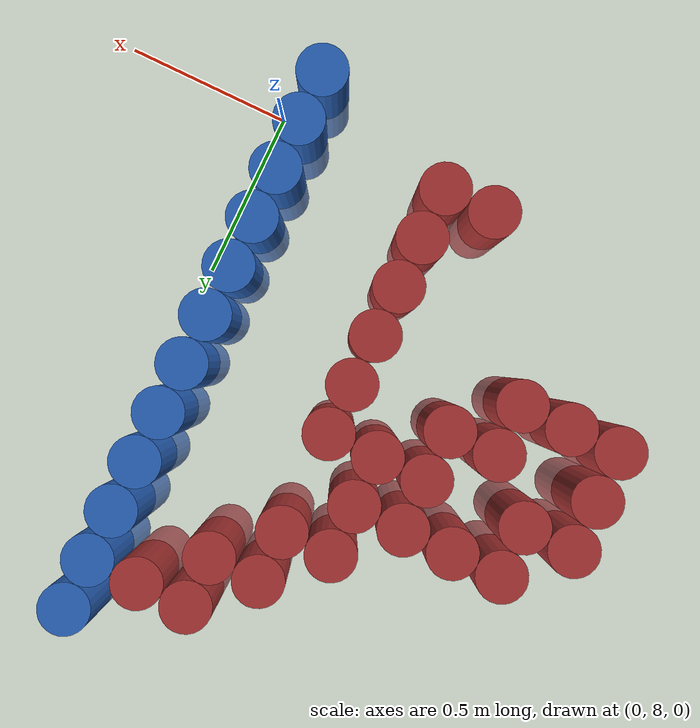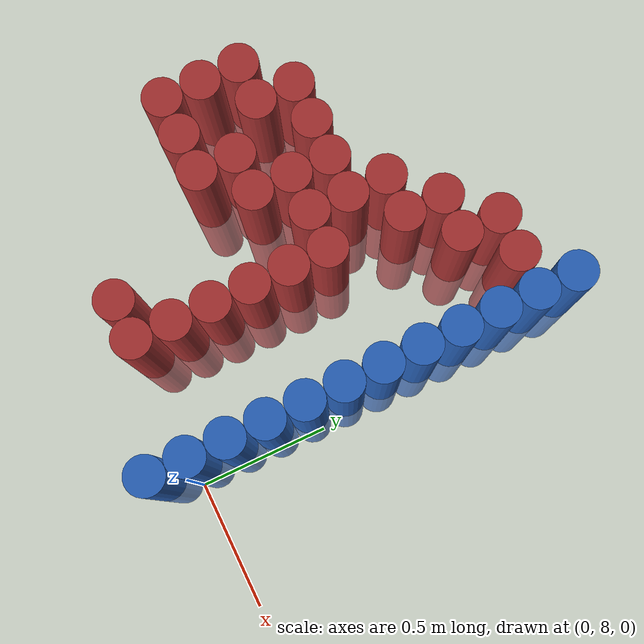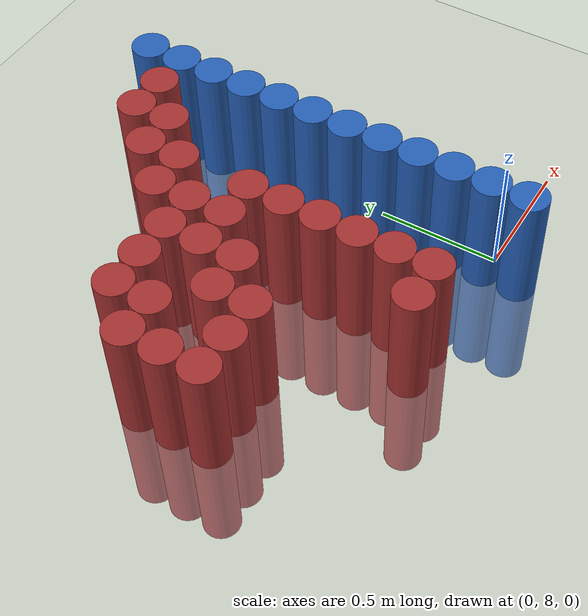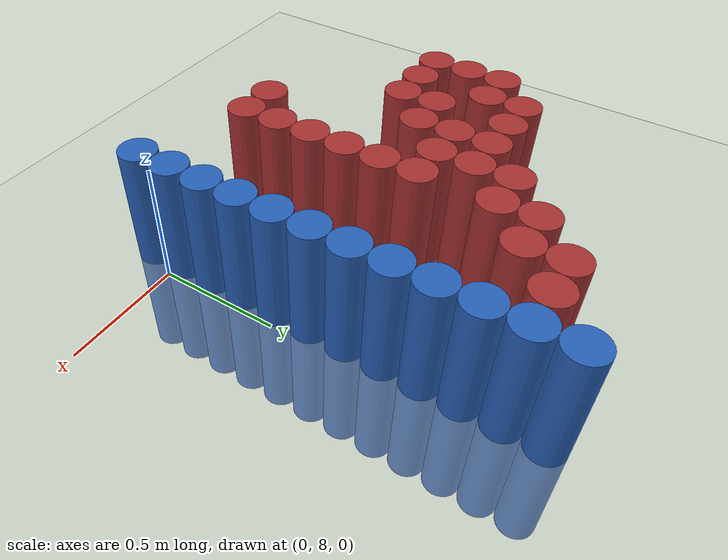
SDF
<sdf version="1.6">
 <world name="default">
  <model name="ground_plane">
   <static>1</static>
   <link name="link">
    <collision name="collision">
     <geometry><plane><normal>0 0 1</normal><size>100 100</size></plane></geometry>
     <surface><friction><ode><mu>100</mu><mu2>50</mu2></ode></friction></surface>
    </collision>
    <visual name="visual">
     <cast_shadows>0</cast_shadows>
     <geometry><plane><normal>0 0 1</normal><size>100 100</size></plane></geometry>
     <material>
      <script><uri>file://media/materials/scripts/gazebo.material</uri><name>Gazebo/Grey</name></script>
     </material>
    </visual>
   </link>
  </model>
  <model name="unit_cylinder_218">
   <static>1</static>
   <pose>-1.275000 8.475000 0.000000 0.000000 0.000000 0.000000</pose>
   <link name="link">
    <inertial>
     <mass>1</mass>
     <inertia><ixx>0.145833</ixx><ixy>0</ixy><ixz>0</ixz><iyy>0.145833</iyy><iyz>0</iyz><izz>0.125</izz></inertia>
    </inertial>
    <collision name="collision">
     <geometry><cylinder><radius>0.075000</radius><length>1</length></cylinder></geometry>
    </collision>
    <visual name="visual">
     <geometry><cylinder><radius>0.075000</radius><length>1</length></cylinder></geometry>
     <material>
      <ambient>0.648000 0.192000 0.192000 1</ambient>
      <diffuse>0.648000 0.192000 0.192000 1</diffuse>
     </material>
     <material>
      <script><name>Gazebo/Grey</name><uri>file://media/materials/scripts/gazebo.material</uri></script>
     </material>
    </visual>
    <sensor name="sensor_contact" type="contact"><contact><collision>collision</collision></contact></sensor>
   </link>
   <plugin filename="gz-sim-touchplugin-system" name="gz::sim::systems::TouchPlugin">
    <target>robot</target>
    <namespace>robot</namespace>
    <time>0.001</time>
    <enabled>true</enabled>
   </plugin>
  </model>
  <model name="unit_cylinder_219">
   <static>1</static>
   <pose>-1.275000 8.625000 0.000000 0.000000 0.000000 0.000000</pose>
   <link name="link">
    <inertial>
     <mass>1</mass>
     <inertia><ixx>0.145833</ixx><ixy>0</ixy><ixz>0</ixz><iyy>0.145833</iyy><iyz>0</iyz><izz>0.125</izz></inertia>
    </inertial>
    <collision name="collision">
     <geometry><cylinder><radius>0.075000</radius><length>1</length></cylinder></geometry>
    </collision>
    <visual name="visual">
     <geometry><cylinder><radius>0.075000</radius><length>1</length></cylinder></geometry>
     <material>
      <ambient>0.648000 0.192000 0.192000 1</ambient>
      <diffuse>0.648000 0.192000 0.192000 1</diffuse>
     </material>
     <material>
      <script><name>Gazebo/Grey</name><uri>file://media/materials/scripts/gazebo.material</uri></script>
     </material>
    </visual>
    <sensor name="sensor_contact" type="contact"><contact><collision>collision</collision></contact></sensor>
   </link>
   <plugin filename="gz-sim-touchplugin-system" name="gz::sim::systems::TouchPlugin">
    <target>robot</target>
    <namespace>robot</namespace>
    <time>0.001</time>
    <enabled>true</enabled>
   </plugin>
  </model>
  <model name="unit_cylinder_220">
   <static>1</static>
   <pose>-1.275000 8.775000 0.000000 0.000000 0.000000 0.000000</pose>
   <link name="link">
    <inertial>
     <mass>1</mass>
     <inertia><ixx>0.145833</ixx><ixy>0</ixy><ixz>0</ixz><iyy>0.145833</iyy><iyz>0</iyz><izz>0.125</izz></inertia>
    </inertial>
    <collision name="collision">
     <geometry><cylinder><radius>0.075000</radius><length>1</length></cylinder></geometry>
    </collision>
    <visual name="visual">
     <geometry><cylinder><radius>0.075000</radius><length>1</length></cylinder></geometry>
     <material>
      <ambient>0.648000 0.192000 0.192000 1</ambient>
      <diffuse>0.648000 0.192000 0.192000 1</diffuse>
     </material>
     <material>
      <script><name>Gazebo/Grey</name><uri>file://media/materials/scripts/gazebo.material</uri></script>
     </material>
    </visual>
    <sensor name="sensor_contact" type="contact"><contact><collision>collision</collision></contact></sensor>
   </link>
   <plugin filename="gz-sim-touchplugin-system" name="gz::sim::systems::TouchPlugin">
    <target>robot</target>
    <namespace>robot</namespace>
    <time>0.001</time>
    <enabled>true</enabled>
   </plugin>
  </model>
  <model name="unit_cylinder_226">
   <static>1</static>
   <pose>-1.125000 8.475000 0.000000 0.000000 0.000000 0.000000</pose>
   <link name="link">
    <inertial>
     <mass>1</mass>
     <inertia><ixx>0.145833</ixx><ixy>0</ixy><ixz>0</ixz><iyy>0.145833</iyy><iyz>0</iyz><izz>0.125</izz></inertia>
    </inertial>
    <collision name="collision">
     <geometry><cylinder><radius>0.075000</radius><length>1</length></cylinder></geometry>
    </collision>
    <visual name="visual">
     <geometry><cylinder><radius>0.075000</radius><length>1</length></cylinder></geometry>
     <material>
      <ambient>0.648000 0.192000 0.192000 1</ambient>
      <diffuse>0.648000 0.192000 0.192000 1</diffuse>
     </material>
     <material>
      <script><name>Gazebo/Grey</name><uri>file://media/materials/scripts/gazebo.material</uri></script>
     </material>
    </visual>
    <sensor name="sensor_contact" type="contact"><contact><collision>collision</collision></contact></sensor>
   </link>
   <plugin filename="gz-sim-touchplugin-system" name="gz::sim::systems::TouchPlugin">
    <target>robot</target>
    <namespace>robot</namespace>
    <time>0.001</time>
    <enabled>true</enabled>
   </plugin>
  </model>
  <model name="unit_cylinder_227">
   <static>1</static>
   <pose>-1.125000 8.775000 0.000000 0.000000 0.000000 0.000000</pose>
   <link name="link">
    <inertial>
     <mass>1</mass>
     <inertia><ixx>0.145833</ixx><ixy>0</ixy><ixz>0</ixz><iyy>0.145833</iyy><iyz>0</iyz><izz>0.125</izz></inertia>
    </inertial>
    <collision name="collision">
     <geometry><cylinder><radius>0.075000</radius><length>1</length></cylinder></geometry>
    </collision>
    <visual name="visual">
     <geometry><cylinder><radius>0.075000</radius><length>1</length></cylinder></geometry>
     <material>
      <ambient>0.648000 0.192000 0.192000 1</ambient>
      <diffuse>0.648000 0.192000 0.192000 1</diffuse>
     </material>
     <material>
      <script><name>Gazebo/Grey</name><uri>file://media/materials/scripts/gazebo.material</uri></script>
     </material>
    </visual>
    <sensor name="sensor_contact" type="contact"><contact><collision>collision</collision></contact></sensor>
   </link>
   <plugin filename="gz-sim-touchplugin-system" name="gz::sim::systems::TouchPlugin">
    <target>robot</target>
    <namespace>robot</namespace>
    <time>0.001</time>
    <enabled>true</enabled>
   </plugin>
  </model>
  <model name="unit_cylinder_228">
   <static>1</static>
   <pose>-1.125000 8.925000 0.000000 0.000000 0.000000 0.000000</pose>
   <link name="link">
    <inertial>
     <mass>1</mass>
     <inertia><ixx>0.145833</ixx><ixy>0</ixy><ixz>0</ixz><iyy>0.145833</iyy><iyz>0</iyz><izz>0.125</izz></inertia>
    </inertial>
    <collision name="collision">
     <geometry><cylinder><radius>0.075000</radius><length>1</length></cylinder></geometry>
    </collision>
    <visual name="visual">
     <geometry><cylinder><radius>0.075000</radius><length>1</length></cylinder></geometry>
     <material>
      <ambient>0.648000 0.192000 0.192000 1</ambient>
      <diffuse>0.648000 0.192000 0.192000 1</diffuse>
     </material>
     <material>
      <script><name>Gazebo/Grey</name><uri>file://media/materials/scripts/gazebo.material</uri></script>
     </material>
    </visual>
    <sensor name="sensor_contact" type="contact"><contact><collision>collision</collision></contact></sensor>
   </link>
   <plugin filename="gz-sim-touchplugin-system" name="gz::sim::systems::TouchPlugin">
    <target>robot</target>
    <namespace>robot</namespace>
    <time>0.001</time>
    <enabled>true</enabled>
   </plugin>
  </model>
  <model name="unit_cylinder_233">
   <static>1</static>
   <pose>-0.975000 8.475000 0.000000 0.000000 0.000000 0.000000</pose>
   <link name="link">
    <inertial>
     <mass>1</mass>
     <inertia><ixx>0.145833</ixx><ixy>0</ixy><ixz>0</ixz><iyy>0.145833</iyy><iyz>0</iyz><izz>0.125</izz></inertia>
    </inertial>
    <collision name="collision">
     <geometry><cylinder><radius>0.075000</radius><length>1</length></cylinder></geometry>
    </collision>
    <visual name="visual">
     <geometry><cylinder><radius>0.075000</radius><length>1</length></cylinder></geometry>
     <material>
      <ambient>0.648000 0.192000 0.192000 1</ambient>
      <diffuse>0.648000 0.192000 0.192000 1</diffuse>
     </material>
     <material>
      <script><name>Gazebo/Grey</name><uri>file://media/materials/scripts/gazebo.material</uri></script>
     </material>
    </visual>
    <sensor name="sensor_contact" type="contact"><contact><collision>collision</collision></contact></sensor>
   </link>
   <plugin filename="gz-sim-touchplugin-system" name="gz::sim::systems::TouchPlugin">
    <target>robot</target>
    <namespace>robot</namespace>
    <time>0.001</time>
    <enabled>true</enabled>
   </plugin>
  </model>
  <model name="unit_cylinder_234">
   <static>1</static>
   <pose>-0.975000 8.625000 0.000000 0.000000 0.000000 0.000000</pose>
   <link name="link">
    <inertial>
     <mass>1</mass>
     <inertia><ixx>0.145833</ixx><ixy>0</ixy><ixz>0</ixz><iyy>0.145833</iyy><iyz>0</iyz><izz>0.125</izz></inertia>
    </inertial>
    <collision name="collision">
     <geometry><cylinder><radius>0.075000</radius><length>1</length></cylinder></geometry>
    </collision>
    <visual name="visual">
     <geometry><cylinder><radius>0.075000</radius><length>1</length></cylinder></geometry>
     <material>
      <ambient>0.648000 0.192000 0.192000 1</ambient>
      <diffuse>0.648000 0.192000 0.192000 1</diffuse>
     </material>
     <material>
      <script><name>Gazebo/Grey</name><uri>file://media/materials/scripts/gazebo.material</uri></script>
     </material>
    </visual>
    <sensor name="sensor_contact" type="contact"><contact><collision>collision</collision></contact></sensor>
   </link>
   <plugin filename="gz-sim-touchplugin-system" name="gz::sim::systems::TouchPlugin">
    <target>robot</target>
    <namespace>robot</namespace>
    <time>0.001</time>
    <enabled>true</enabled>
   </plugin>
  </model>
  <model name="unit_cylinder_235">
   <static>1</static>
   <pose>-0.975000 8.925000 0.000000 0.000000 0.000000 0.000000</pose>
   <link name="link">
    <inertial>
     <mass>1</mass>
     <inertia><ixx>0.145833</ixx><ixy>0</ixy><ixz>0</ixz><iyy>0.145833</iyy><iyz>0</iyz><izz>0.125</izz></inertia>
    </inertial>
    <collision name="collision">
     <geometry><cylinder><radius>0.075000</radius><length>1</length></cylinder></geometry>
    </collision>
    <visual name="visual">
     <geometry><cylinder><radius>0.075000</radius><length>1</length></cylinder></geometry>
     <material>
      <ambient>0.648000 0.192000 0.192000 1</ambient>
      <diffuse>0.648000 0.192000 0.192000 1</diffuse>
     </material>
     <material>
      <script><name>Gazebo/Grey</name><uri>file://media/materials/scripts/gazebo.material</uri></script>
     </material>
    </visual>
    <sensor name="sensor_contact" type="contact"><contact><collision>collision</collision></contact></sensor>
   </link>
   <plugin filename="gz-sim-touchplugin-system" name="gz::sim::systems::TouchPlugin">
    <target>robot</target>
    <namespace>robot</namespace>
    <time>0.001</time>
    <enabled>true</enabled>
   </plugin>
  </model>
  <model name="unit_cylinder_238">
   <static>1</static>
   <pose>-0.825000 8.625000 0.000000 0.000000 0.000000 0.000000</pose>
   <link name="link">
    <inertial>
     <mass>1</mass>
     <inertia><ixx>0.145833</ixx><ixy>0</ixy><ixz>0</ixz><iyy>0.145833</iyy><iyz>0</iyz><izz>0.125</izz></inertia>
    </inertial>
    <collision name="collision">
     <geometry><cylinder><radius>0.075000</radius><length>1</length></cylinder></geometry>
    </collision>
    <visual name="visual">
     <geometry><cylinder><radius>0.075000</radius><length>1</length></cylinder></geometry>
     <material>
      <ambient>0.648000 0.192000 0.192000 1</ambient>
      <diffuse>0.648000 0.192000 0.192000 1</diffuse>
     </material>
     <material>
      <script><name>Gazebo/Grey</name><uri>file://media/materials/scripts/gazebo.material</uri></script>
     </material>
    </visual>
    <sensor name="sensor_contact" type="contact"><contact><collision>collision</collision></contact></sensor>
   </link>
   <plugin filename="gz-sim-touchplugin-system" name="gz::sim::systems::TouchPlugin">
    <target>robot</target>
    <namespace>robot</namespace>
    <time>0.001</time>
    <enabled>true</enabled>
   </plugin>
  </model>
  <model name="unit_cylinder_239">
   <static>1</static>
   <pose>-0.825000 8.775000 0.000000 0.000000 0.000000 0.000000</pose>
   <link name="link">
    <inertial>
     <mass>1</mass>
     <inertia><ixx>0.145833</ixx><ixy>0</ixy><ixz>0</ixz><iyy>0.145833</iyy><iyz>0</iyz><izz>0.125</izz></inertia>
    </inertial>
    <collision name="collision">
     <geometry><cylinder><radius>0.075000</radius><length>1</length></cylinder></geometry>
    </collision>
    <visual name="visual">
     <geometry><cylinder><radius>0.075000</radius><length>1</length></cylinder></geometry>
     <material>
      <ambient>0.648000 0.192000 0.192000 1</ambient>
      <diffuse>0.648000 0.192000 0.192000 1</diffuse>
     </material>
     <material>
      <script><name>Gazebo/Grey</name><uri>file://media/materials/scripts/gazebo.material</uri></script>
     </material>
    </visual>
    <sensor name="sensor_contact" type="contact"><contact><collision>collision</collision></contact></sensor>
   </link>
   <plugin filename="gz-sim-touchplugin-system" name="gz::sim::systems::TouchPlugin">
    <target>robot</target>
    <namespace>robot</namespace>
    <time>0.001</time>
    <enabled>true</enabled>
   </plugin>
  </model>
  <model name="unit_cylinder_240">
   <static>1</static>
   <pose>-0.825000 8.925000 0.000000 0.000000 0.000000 0.000000</pose>
   <link name="link">
    <inertial>
     <mass>1</mass>
     <inertia><ixx>0.145833</ixx><ixy>0</ixy><ixz>0</ixz><iyy>0.145833</iyy><iyz>0</iyz><izz>0.125</izz></inertia>
    </inertial>
    <collision name="collision">
     <geometry><cylinder><radius>0.075000</radius><length>1</length></cylinder></geometry>
    </collision>
    <visual name="visual">
     <geometry><cylinder><radius>0.075000</radius><length>1</length></cylinder></geometry>
     <material>
      <ambient>0.648000 0.192000 0.192000 1</ambient>
      <diffuse>0.648000 0.192000 0.192000 1</diffuse>
     </material>
     <material>
      <script><name>Gazebo/Grey</name><uri>file://media/materials/scripts/gazebo.material</uri></script>
     </material>
    </visual>
    <sensor name="sensor_contact" type="contact"><contact><collision>collision</collision></contact></sensor>
   </link>
   <plugin filename="gz-sim-touchplugin-system" name="gz::sim::systems::TouchPlugin">
    <target>robot</target>
    <namespace>robot</namespace>
    <time>0.001</time>
    <enabled>true</enabled>
   </plugin>
  </model>
  <model name="unit_cylinder_243">
   <static>1</static>
   <pose>-0.675000 8.025000 0.000000 0.000000 0.000000 0.000000</pose>
   <link name="link">
    <inertial>
     <mass>1</mass>
     <inertia><ixx>0.145833</ixx><ixy>0</ixy><ixz>0</ixz><iyy>0.145833</iyy><iyz>0</iyz><izz>0.125</izz></inertia>
    </inertial>
    <collision name="collision">
     <geometry><cylinder><radius>0.075000</radius><length>1</length></cylinder></geometry>
    </collision>
    <visual name="visual">
     <geometry><cylinder><radius>0.075000</radius><length>1</length></cylinder></geometry>
     <material>
      <ambient>0.648000 0.192000 0.192000 1</ambient>
      <diffuse>0.648000 0.192000 0.192000 1</diffuse>
     </material>
     <material>
      <script><name>Gazebo/Grey</name><uri>file://media/materials/scripts/gazebo.material</uri></script>
     </material>
    </visual>
    <sensor name="sensor_contact" type="contact"><contact><collision>collision</collision></contact></sensor>
   </link>
   <plugin filename="gz-sim-touchplugin-system" name="gz::sim::systems::TouchPlugin">
    <target>robot</target>
    <namespace>robot</namespace>
    <time>0.001</time>
    <enabled>true</enabled>
   </plugin>
  </model>
  <model name="unit_cylinder_244">
   <static>1</static>
   <pose>-0.675000 8.775000 0.000000 0.000000 0.000000 0.000000</pose>
   <link name="link">
    <inertial>
     <mass>1</mass>
     <inertia><ixx>0.145833</ixx><ixy>0</ixy><ixz>0</ixz><iyy>0.145833</iyy><iyz>0</iyz><izz>0.125</izz></inertia>
    </inertial>
    <collision name="collision">
     <geometry><cylinder><radius>0.075000</radius><length>1</length></cylinder></geometry>
    </collision>
    <visual name="visual">
     <geometry><cylinder><radius>0.075000</radius><length>1</length></cylinder></geometry>
     <material>
      <ambient>0.648000 0.192000 0.192000 1</ambient>
      <diffuse>0.648000 0.192000 0.192000 1</diffuse>
     </material>
     <material>
      <script><name>Gazebo/Grey</name><uri>file://media/materials/scripts/gazebo.material</uri></script>
     </material>
    </visual>
    <sensor name="sensor_contact" type="contact"><contact><collision>collision</collision></contact></sensor>
   </link>
   <plugin filename="gz-sim-touchplugin-system" name="gz::sim::systems::TouchPlugin">
    <target>robot</target>
    <namespace>robot</namespace>
    <time>0.001</time>
    <enabled>true</enabled>
   </plugin>
  </model>
  <model name="unit_cylinder_245">
   <static>1</static>
   <pose>-0.675000 8.925000 0.000000 0.000000 0.000000 0.000000</pose>
   <link name="link">
    <inertial>
     <mass>1</mass>
     <inertia><ixx>0.145833</ixx><ixy>0</ixy><ixz>0</ixz><iyy>0.145833</iyy><iyz>0</iyz><izz>0.125</izz></inertia>
    </inertial>
    <collision name="collision">
     <geometry><cylinder><radius>0.075000</radius><length>1</length></cylinder></geometry>
    </collision>
    <visual name="visual">
     <geometry><cylinder><radius>0.075000</radius><length>1</length></cylinder></geometry>
     <material>
      <ambient>0.648000 0.192000 0.192000 1</ambient>
      <diffuse>0.648000 0.192000 0.192000 1</diffuse>
     </material>
     <material>
      <script><name>Gazebo/Grey</name><uri>file://media/materials/scripts/gazebo.material</uri></script>
     </material>
    </visual>
    <sensor name="sensor_contact" type="contact"><contact><collision>collision</collision></contact></sensor>
   </link>
   <plugin filename="gz-sim-touchplugin-system" name="gz::sim::systems::TouchPlugin">
    <target>robot</target>
    <namespace>robot</namespace>
    <time>0.001</time>
    <enabled>true</enabled>
   </plugin>
  </model>
  <model name="unit_cylinder_246">
   <static>1</static>
   <pose>-0.675000 9.075000 0.000000 0.000000 0.000000 0.000000</pose>
   <link name="link">
    <inertial>
     <mass>1</mass>
     <inertia><ixx>0.145833</ixx><ixy>0</ixy><ixz>0</ixz><iyy>0.145833</iyy><iyz>0</iyz><izz>0.125</izz></inertia>
    </inertial>
    <collision name="collision">
     <geometry><cylinder><radius>0.075000</radius><length>1</length></cylinder></geometry>
    </collision>
    <visual name="visual">
     <geometry><cylinder><radius>0.075000</radius><length>1</length></cylinder></geometry>
     <material>
      <ambient>0.648000 0.192000 0.192000 1</ambient>
      <diffuse>0.648000 0.192000 0.192000 1</diffuse>
     </material>
     <material>
      <script><name>Gazebo/Grey</name><uri>file://media/materials/scripts/gazebo.material</uri></script>
     </material>
    </visual>
    <sensor name="sensor_contact" type="contact"><contact><collision>collision</collision></contact></sensor>
   </link>
   <plugin filename="gz-sim-touchplugin-system" name="gz::sim::systems::TouchPlugin">
    <target>robot</target>
    <namespace>robot</namespace>
    <time>0.001</time>
    <enabled>true</enabled>
   </plugin>
  </model>
  <model name="unit_cylinder_251">
   <static>1</static>
   <pose>-0.525000 8.025000 0.000000 0.000000 0.000000 0.000000</pose>
   <link name="link">
    <inertial>
     <mass>1</mass>
     <inertia><ixx>0.145833</ixx><ixy>0</ixy><ixz>0</ixz><iyy>0.145833</iyy><iyz>0</iyz><izz>0.125</izz></inertia>
    </inertial>
    <collision name="collision">
     <geometry><cylinder><radius>0.075000</radius><length>1</length></cylinder></geometry>
    </collision>
    <visual name="visual">
     <geometry><cylinder><radius>0.075000</radius><length>1</length></cylinder></geometry>
     <material>
      <ambient>0.648000 0.192000 0.192000 1</ambient>
      <diffuse>0.648000 0.192000 0.192000 1</diffuse>
     </material>
     <material>
      <script><name>Gazebo/Grey</name><uri>file://media/materials/scripts/gazebo.material</uri></script>
     </material>
    </visual>
    <sensor name="sensor_contact" type="contact"><contact><collision>collision</collision></contact></sensor>
   </link>
   <plugin filename="gz-sim-touchplugin-system" name="gz::sim::systems::TouchPlugin">
    <target>robot</target>
    <namespace>robot</namespace>
    <time>0.001</time>
    <enabled>true</enabled>
   </plugin>
  </model>
  <model name="unit_cylinder_252">
   <static>1</static>
   <pose>-0.525000 8.175000 0.000000 0.000000 0.000000 0.000000</pose>
   <link name="link">
    <inertial>
     <mass>1</mass>
     <inertia><ixx>0.145833</ixx><ixy>0</ixy><ixz>0</ixz><iyy>0.145833</iyy><iyz>0</iyz><izz>0.125</izz></inertia>
    </inertial>
    <collision name="collision">
     <geometry><cylinder><radius>0.075000</radius><length>1</length></cylinder></geometry>
    </collision>
    <visual name="visual">
     <geometry><cylinder><radius>0.075000</radius><length>1</length></cylinder></geometry>
     <material>
      <ambient>0.648000 0.192000 0.192000 1</ambient>
      <diffuse>0.648000 0.192000 0.192000 1</diffuse>
     </material>
     <material>
      <script><name>Gazebo/Grey</name><uri>file://media/materials/scripts/gazebo.material</uri></script>
     </material>
    </visual>
    <sensor name="sensor_contact" type="contact"><contact><collision>collision</collision></contact></sensor>
   </link>
   <plugin filename="gz-sim-touchplugin-system" name="gz::sim::systems::TouchPlugin">
    <target>robot</target>
    <namespace>robot</namespace>
    <time>0.001</time>
    <enabled>true</enabled>
   </plugin>
  </model>
  <model name="unit_cylinder_253">
   <static>1</static>
   <pose>-0.525000 8.325000 0.000000 0.000000 0.000000 0.000000</pose>
   <link name="link">
    <inertial>
     <mass>1</mass>
     <inertia><ixx>0.145833</ixx><ixy>0</ixy><ixz>0</ixz><iyy>0.145833</iyy><iyz>0</iyz><izz>0.125</izz></inertia>
    </inertial>
    <collision name="collision">
     <geometry><cylinder><radius>0.075000</radius><length>1</length></cylinder></geometry>
    </collision>
    <visual name="visual">
     <geometry><cylinder><radius>0.075000</radius><length>1</length></cylinder></geometry>
     <material>
      <ambient>0.648000 0.192000 0.192000 1</ambient>
      <diffuse>0.648000 0.192000 0.192000 1</diffuse>
     </material>
     <material>
      <script><name>Gazebo/Grey</name><uri>file://media/materials/scripts/gazebo.material</uri></script>
     </material>
    </visual>
    <sensor name="sensor_contact" type="contact"><contact><collision>collision</collision></contact></sensor>
   </link>
   <plugin filename="gz-sim-touchplugin-system" name="gz::sim::systems::TouchPlugin">
    <target>robot</target>
    <namespace>robot</namespace>
    <time>0.001</time>
    <enabled>true</enabled>
   </plugin>
  </model>
  <model name="unit_cylinder_254">
   <static>1</static>
   <pose>-0.525000 8.475000 0.000000 0.000000 0.000000 0.000000</pose>
   <link name="link">
    <inertial>
     <mass>1</mass>
     <inertia><ixx>0.145833</ixx><ixy>0</ixy><ixz>0</ixz><iyy>0.145833</iyy><iyz>0</iyz><izz>0.125</izz></inertia>
    </inertial>
    <collision name="collision">
     <geometry><cylinder><radius>0.075000</radius><length>1</length></cylinder></geometry>
    </collision>
    <visual name="visual">
     <geometry><cylinder><radius>0.075000</radius><length>1</length></cylinder></geometry>
     <material>
      <ambient>0.648000 0.192000 0.192000 1</ambient>
      <diffuse>0.648000 0.192000 0.192000 1</diffuse>
     </material>
     <material>
      <script><name>Gazebo/Grey</name><uri>file://media/materials/scripts/gazebo.material</uri></script>
     </material>
    </visual>
    <sensor name="sensor_contact" type="contact"><contact><collision>collision</collision></contact></sensor>
   </link>
   <plugin filename="gz-sim-touchplugin-system" name="gz::sim::systems::TouchPlugin">
    <target>robot</target>
    <namespace>robot</namespace>
    <time>0.001</time>
    <enabled>true</enabled>
   </plugin>
  </model>
  <model name="unit_cylinder_255">
   <static>1</static>
   <pose>-0.525000 8.625000 0.000000 0.000000 0.000000 0.000000</pose>
   <link name="link">
    <inertial>
     <mass>1</mass>
     <inertia><ixx>0.145833</ixx><ixy>0</ixy><ixz>0</ixz><iyy>0.145833</iyy><iyz>0</iyz><izz>0.125</izz></inertia>
    </inertial>
    <collision name="collision">
     <geometry><cylinder><radius>0.075000</radius><length>1</length></cylinder></geometry>
    </collision>
    <visual name="visual">
     <geometry><cylinder><radius>0.075000</radius><length>1</length></cylinder></geometry>
     <material>
      <ambient>0.648000 0.192000 0.192000 1</ambient>
      <diffuse>0.648000 0.192000 0.192000 1</diffuse>
     </material>
     <material>
      <script><name>Gazebo/Grey</name><uri>file://media/materials/scripts/gazebo.material</uri></script>
     </material>
    </visual>
    <sensor name="sensor_contact" type="contact"><contact><collision>collision</collision></contact></sensor>
   </link>
   <plugin filename="gz-sim-touchplugin-system" name="gz::sim::systems::TouchPlugin">
    <target>robot</target>
    <namespace>robot</namespace>
    <time>0.001</time>
    <enabled>true</enabled>
   </plugin>
  </model>
  <model name="unit_cylinder_256">
   <static>1</static>
   <pose>-0.525000 8.775000 0.000000 0.000000 0.000000 0.000000</pose>
   <link name="link">
    <inertial>
     <mass>1</mass>
     <inertia><ixx>0.145833</ixx><ixy>0</ixy><ixz>0</ixz><iyy>0.145833</iyy><iyz>0</iyz><izz>0.125</izz></inertia>
    </inertial>
    <collision name="collision">
     <geometry><cylinder><radius>0.075000</radius><length>1</length></cylinder></geometry>
    </collision>
    <visual name="visual">
     <geometry><cylinder><radius>0.075000</radius><length>1</length></cylinder></geometry>
     <material>
      <ambient>0.648000 0.192000 0.192000 1</ambient>
      <diffuse>0.648000 0.192000 0.192000 1</diffuse>
     </material>
     <material>
      <script><name>Gazebo/Grey</name><uri>file://media/materials/scripts/gazebo.material</uri></script>
     </material>
    </visual>
    <sensor name="sensor_contact" type="contact"><contact><collision>collision</collision></contact></sensor>
   </link>
   <plugin filename="gz-sim-touchplugin-system" name="gz::sim::systems::TouchPlugin">
    <target>robot</target>
    <namespace>robot</namespace>
    <time>0.001</time>
    <enabled>true</enabled>
   </plugin>
  </model>
  <model name="unit_cylinder_257">
   <static>1</static>
   <pose>-0.525000 9.075000 0.000000 0.000000 0.000000 0.000000</pose>
   <link name="link">
    <inertial>
     <mass>1</mass>
     <inertia><ixx>0.145833</ixx><ixy>0</ixy><ixz>0</ixz><iyy>0.145833</iyy><iyz>0</iyz><izz>0.125</izz></inertia>
    </inertial>
    <collision name="collision">
     <geometry><cylinder><radius>0.075000</radius><length>1</length></cylinder></geometry>
    </collision>
    <visual name="visual">
     <geometry><cylinder><radius>0.075000</radius><length>1</length></cylinder></geometry>
     <material>
      <ambient>0.648000 0.192000 0.192000 1</ambient>
      <diffuse>0.648000 0.192000 0.192000 1</diffuse>
     </material>
     <material>
      <script><name>Gazebo/Grey</name><uri>file://media/materials/scripts/gazebo.material</uri></script>
     </material>
    </visual>
    <sensor name="sensor_contact" type="contact"><contact><collision>collision</collision></contact></sensor>
   </link>
   <plugin filename="gz-sim-touchplugin-system" name="gz::sim::systems::TouchPlugin">
    <target>robot</target>
    <namespace>robot</namespace>
    <time>0.001</time>
    <enabled>true</enabled>
   </plugin>
  </model>
  <model name="unit_cylinder_258">
   <static>1</static>
   <pose>-0.525000 9.225000 0.000000 0.000000 0.000000 0.000000</pose>
   <link name="link">
    <inertial>
     <mass>1</mass>
     <inertia><ixx>0.145833</ixx><ixy>0</ixy><ixz>0</ixz><iyy>0.145833</iyy><iyz>0</iyz><izz>0.125</izz></inertia>
    </inertial>
    <collision name="collision">
     <geometry><cylinder><radius>0.075000</radius><length>1</length></cylinder></geometry>
    </collision>
    <visual name="visual">
     <geometry><cylinder><radius>0.075000</radius><length>1</length></cylinder></geometry>
     <material>
      <ambient>0.648000 0.192000 0.192000 1</ambient>
      <diffuse>0.648000 0.192000 0.192000 1</diffuse>
     </material>
     <material>
      <script><name>Gazebo/Grey</name><uri>file://media/materials/scripts/gazebo.material</uri></script>
     </material>
    </visual>
    <sensor name="sensor_contact" type="contact"><contact><collision>collision</collision></contact></sensor>
   </link>
   <plugin filename="gz-sim-touchplugin-system" name="gz::sim::systems::TouchPlugin">
    <target>robot</target>
    <namespace>robot</namespace>
    <time>0.001</time>
    <enabled>true</enabled>
   </plugin>
  </model>
  <model name="unit_cylinder_270">
   <static>1</static>
   <pose>-0.375000 9.225000 0.000000 0.000000 0.000000 0.000000</pose>
   <link name="link">
    <inertial>
     <mass>1</mass>
     <inertia><ixx>0.145833</ixx><ixy>0</ixy><ixz>0</ixz><iyy>0.145833</iyy><iyz>0</iyz><izz>0.125</izz></inertia>
    </inertial>
    <collision name="collision">
     <geometry><cylinder><radius>0.075000</radius><length>1</length></cylinder></geometry>
    </collision>
    <visual name="visual">
     <geometry><cylinder><radius>0.075000</radius><length>1</length></cylinder></geometry>
     <material>
      <ambient>0.648000 0.192000 0.192000 1</ambient>
      <diffuse>0.648000 0.192000 0.192000 1</diffuse>
     </material>
     <material>
      <script><name>Gazebo/Grey</name><uri>file://media/materials/scripts/gazebo.material</uri></script>
     </material>
    </visual>
    <sensor name="sensor_contact" type="contact"><contact><collision>collision</collision></contact></sensor>
   </link>
   <plugin filename="gz-sim-touchplugin-system" name="gz::sim::systems::TouchPlugin">
    <target>robot</target>
    <namespace>robot</namespace>
    <time>0.001</time>
    <enabled>true</enabled>
   </plugin>
  </model>
  <model name="unit_cylinder_271">
   <static>1</static>
   <pose>-0.375000 9.375000 0.000000 0.000000 0.000000 0.000000</pose>
   <link name="link">
    <inertial>
     <mass>1</mass>
     <inertia><ixx>0.145833</ixx><ixy>0</ixy><ixz>0</ixz><iyy>0.145833</iyy><iyz>0</iyz><izz>0.125</izz></inertia>
    </inertial>
    <collision name="collision">
     <geometry><cylinder><radius>0.075000</radius><length>1</length></cylinder></geometry>
    </collision>
    <visual name="visual">
     <geometry><cylinder><radius>0.075000</radius><length>1</length></cylinder></geometry>
     <material>
      <ambient>0.648000 0.192000 0.192000 1</ambient>
      <diffuse>0.648000 0.192000 0.192000 1</diffuse>
     </material>
     <material>
      <script><name>Gazebo/Grey</name><uri>file://media/materials/scripts/gazebo.material</uri></script>
     </material>
    </visual>
    <sensor name="sensor_contact" type="contact"><contact><collision>collision</collision></contact></sensor>
   </link>
   <plugin filename="gz-sim-touchplugin-system" name="gz::sim::systems::TouchPlugin">
    <target>robot</target>
    <namespace>robot</namespace>
    <time>0.001</time>
    <enabled>true</enabled>
   </plugin>
  </model>
  <model name="unit_cylinder_279">
   <static>1</static>
   <pose>-0.225000 9.375000 0.000000 0.000000 0.000000 0.000000</pose>
   <link name="link">
    <inertial>
     <mass>1</mass>
     <inertia><ixx>0.145833</ixx><ixy>0</ixy><ixz>0</ixz><iyy>0.145833</iyy><iyz>0</iyz><izz>0.125</izz></inertia>
    </inertial>
    <collision name="collision">
     <geometry><cylinder><radius>0.075000</radius><length>1</length></cylinder></geometry>
    </collision>
    <visual name="visual">
     <geometry><cylinder><radius>0.075000</radius><length>1</length></cylinder></geometry>
     <material>
      <ambient>0.648000 0.192000 0.192000 1</ambient>
      <diffuse>0.648000 0.192000 0.192000 1</diffuse>
     </material>
     <material>
      <script><name>Gazebo/Grey</name><uri>file://media/materials/scripts/gazebo.material</uri></script>
     </material>
    </visual>
    <sensor name="sensor_contact" type="contact"><contact><collision>collision</collision></contact></sensor>
   </link>
   <plugin filename="gz-sim-touchplugin-system" name="gz::sim::systems::TouchPlugin">
    <target>robot</target>
    <namespace>robot</namespace>
    <time>0.001</time>
    <enabled>true</enabled>
   </plugin>
  </model>
  <model name="unit_cylinder_298">
   <static>1</static>
   <pose>-0.075000 7.875000 0.000000 0.000000 0.000000 0.000000</pose>
   <link name="link">
    <inertial>
     <mass>1</mass>
     <inertia><ixx>0.145833</ixx><ixy>0</ixy><ixz>0</ixz><iyy>0.145833</iyy><iyz>0</iyz><izz>0.125</izz></inertia>
    </inertial>
    <collision name="collision">
     <geometry><cylinder><radius>0.075000</radius><length>1</length></cylinder></geometry>
    </collision>
    <visual name="visual">
     <geometry><cylinder><radius>0.075000</radius><length>1</length></cylinder></geometry>
     <material>
      <ambient>0.152000 0.379000 0.720000 1</ambient>
      <diffuse>0.152000 0.379000 0.720000 1</diffuse>
     </material>
     <material>
      <script><name>Gazebo/Grey</name><uri>file://media/materials/scripts/gazebo.material</uri></script>
     </material>
    </visual>
    <sensor name="sensor_contact" type="contact"><contact><collision>collision</collision></contact></sensor>
   </link>
   <plugin filename="gz-sim-touchplugin-system" name="gz::sim::systems::TouchPlugin">
    <target>robot</target>
    <namespace>robot</namespace>
    <time>0.001</time>
    <enabled>true</enabled>
   </plugin>
  </model>
  <model name="unit_cylinder_299">
   <static>1</static>
   <pose>-0.075000 8.025000 0.000000 0.000000 0.000000 0.000000</pose>
   <link name="link">
    <inertial>
     <mass>1</mass>
     <inertia><ixx>0.145833</ixx><ixy>0</ixy><ixz>0</ixz><iyy>0.145833</iyy><iyz>0</iyz><izz>0.125</izz></inertia>
    </inertial>
    <collision name="collision">
     <geometry><cylinder><radius>0.075000</radius><length>1</length></cylinder></geometry>
    </collision>
    <visual name="visual">
     <geometry><cylinder><radius>0.075000</radius><length>1</length></cylinder></geometry>
     <material>
      <ambient>0.152000 0.379000 0.720000 1</ambient>
      <diffuse>0.152000 0.379000 0.720000 1</diffuse>
     </material>
     <material>
      <script><name>Gazebo/Grey</name><uri>file://media/materials/scripts/gazebo.material</uri></script>
     </material>
    </visual>
    <sensor name="sensor_contact" type="contact"><contact><collision>collision</collision></contact></sensor>
   </link>
   <plugin filename="gz-sim-touchplugin-system" name="gz::sim::systems::TouchPlugin">
    <target>robot</target>
    <namespace>robot</namespace>
    <time>0.001</time>
    <enabled>true</enabled>
   </plugin>
  </model>
  <model name="unit_cylinder_300">
   <static>1</static>
   <pose>-0.075000 8.175000 0.000000 0.000000 0.000000 0.000000</pose>
   <link name="link">
    <inertial>
     <mass>1</mass>
     <inertia><ixx>0.145833</ixx><ixy>0</ixy><ixz>0</ixz><iyy>0.145833</iyy><iyz>0</iyz><izz>0.125</izz></inertia>
    </inertial>
    <collision name="collision">
     <geometry><cylinder><radius>0.075000</radius><length>1</length></cylinder></geometry>
    </collision>
    <visual name="visual">
     <geometry><cylinder><radius>0.075000</radius><length>1</length></cylinder></geometry>
     <material>
      <ambient>0.152000 0.379000 0.720000 1</ambient>
      <diffuse>0.152000 0.379000 0.720000 1</diffuse>
     </material>
     <material>
      <script><name>Gazebo/Grey</name><uri>file://media/materials/scripts/gazebo.material</uri></script>
     </material>
    </visual>
    <sensor name="sensor_contact" type="contact"><contact><collision>collision</collision></contact></sensor>
   </link>
   <plugin filename="gz-sim-touchplugin-system" name="gz::sim::systems::TouchPlugin">
    <target>robot</target>
    <namespace>robot</namespace>
    <time>0.001</time>
    <enabled>true</enabled>
   </plugin>
  </model>
  <model name="unit_cylinder_301">
   <static>1</static>
   <pose>-0.075000 8.325000 0.000000 0.000000 0.000000 0.000000</pose>
   <link name="link">
    <inertial>
     <mass>1</mass>
     <inertia><ixx>0.145833</ixx><ixy>0</ixy><ixz>0</ixz><iyy>0.145833</iyy><iyz>0</iyz><izz>0.125</izz></inertia>
    </inertial>
    <collision name="collision">
     <geometry><cylinder><radius>0.075000</radius><length>1</length></cylinder></geometry>
    </collision>
    <visual name="visual">
     <geometry><cylinder><radius>0.075000</radius><length>1</length></cylinder></geometry>
     <material>
      <ambient>0.152000 0.379000 0.720000 1</ambient>
      <diffuse>0.152000 0.379000 0.720000 1</diffuse>
     </material>
     <material>
      <script><name>Gazebo/Grey</name><uri>file://media/materials/scripts/gazebo.material</uri></script>
     </material>
    </visual>
    <sensor name="sensor_contact" type="contact"><contact><collision>collision</collision></contact></sensor>
   </link>
   <plugin filename="gz-sim-touchplugin-system" name="gz::sim::systems::TouchPlugin">
    <target>robot</target>
    <namespace>robot</namespace>
    <time>0.001</time>
    <enabled>true</enabled>
   </plugin>
  </model>
  <model name="unit_cylinder_302">
   <static>1</static>
   <pose>-0.075000 8.475000 0.000000 0.000000 0.000000 0.000000</pose>
   <link name="link">
    <inertial>
     <mass>1</mass>
     <inertia><ixx>0.145833</ixx><ixy>0</ixy><ixz>0</ixz><iyy>0.145833</iyy><iyz>0</iyz><izz>0.125</izz></inertia>
    </inertial>
    <collision name="collision">
     <geometry><cylinder><radius>0.075000</radius><length>1</length></cylinder></geometry>
    </collision>
    <visual name="visual">
     <geometry><cylinder><radius>0.075000</radius><length>1</length></cylinder></geometry>
     <material>
      <ambient>0.152000 0.379000 0.720000 1</ambient>
      <diffuse>0.152000 0.379000 0.720000 1</diffuse>
     </material>
     <material>
      <script><name>Gazebo/Grey</name><uri>file://media/materials/scripts/gazebo.material</uri></script>
     </material>
    </visual>
    <sensor name="sensor_contact" type="contact"><contact><collision>collision</collision></contact></sensor>
   </link>
   <plugin filename="gz-sim-touchplugin-system" name="gz::sim::systems::TouchPlugin">
    <target>robot</target>
    <namespace>robot</namespace>
    <time>0.001</time>
    <enabled>true</enabled>
   </plugin>
  </model>
  <model name="unit_cylinder_303">
   <static>1</static>
   <pose>-0.075000 8.625000 0.000000 0.000000 0.000000 0.000000</pose>
   <link name="link">
    <inertial>
     <mass>1</mass>
     <inertia><ixx>0.145833</ixx><ixy>0</ixy><ixz>0</ixz><iyy>0.145833</iyy><iyz>0</iyz><izz>0.125</izz></inertia>
    </inertial>
    <collision name="collision">
     <geometry><cylinder><radius>0.075000</radius><length>1</length></cylinder></geometry>
    </collision>
    <visual name="visual">
     <geometry><cylinder><radius>0.075000</radius><length>1</length></cylinder></geometry>
     <material>
      <ambient>0.152000 0.379000 0.720000 1</ambient>
      <diffuse>0.152000 0.379000 0.720000 1</diffuse>
     </material>
     <material>
      <script><name>Gazebo/Grey</name><uri>file://media/materials/scripts/gazebo.material</uri></script>
     </material>
    </visual>
    <sensor name="sensor_contact" type="contact"><contact><collision>collision</collision></contact></sensor>
   </link>
   <plugin filename="gz-sim-touchplugin-system" name="gz::sim::systems::TouchPlugin">
    <target>robot</target>
    <namespace>robot</namespace>
    <time>0.001</time>
    <enabled>true</enabled>
   </plugin>
  </model>
  <model name="unit_cylinder_304">
   <static>1</static>
   <pose>-0.075000 8.775000 0.000000 0.000000 0.000000 0.000000</pose>
   <link name="link">
    <inertial>
     <mass>1</mass>
     <inertia><ixx>0.145833</ixx><ixy>0</ixy><ixz>0</ixz><iyy>0.145833</iyy><iyz>0</iyz><izz>0.125</izz></inertia>
    </inertial>
    <collision name="collision">
     <geometry><cylinder><radius>0.075000</radius><length>1</length></cylinder></geometry>
    </collision>
    <visual name="visual">
     <geometry><cylinder><radius>0.075000</radius><length>1</length></cylinder></geometry>
     <material>
      <ambient>0.152000 0.379000 0.720000 1</ambient>
      <diffuse>0.152000 0.379000 0.720000 1</diffuse>
     </material>
     <material>
      <script><name>Gazebo/Grey</name><uri>file://media/materials/scripts/gazebo.material</uri></script>
     </material>
    </visual>
    <sensor name="sensor_contact" type="contact"><contact><collision>collision</collision></contact></sensor>
   </link>
   <plugin filename="gz-sim-touchplugin-system" name="gz::sim::systems::TouchPlugin">
    <target>robot</target>
    <namespace>robot</namespace>
    <time>0.001</time>
    <enabled>true</enabled>
   </plugin>
  </model>
  <model name="unit_cylinder_305">
   <static>1</static>
   <pose>-0.075000 8.925000 0.000000 0.000000 0.000000 0.000000</pose>
   <link name="link">
    <inertial>
     <mass>1</mass>
     <inertia><ixx>0.145833</ixx><ixy>0</ixy><ixz>0</ixz><iyy>0.145833</iyy><iyz>0</iyz><izz>0.125</izz></inertia>
    </inertial>
    <collision name="collision">
     <geometry><cylinder><radius>0.075000</radius><length>1</length></cylinder></geometry>
    </collision>
    <visual name="visual">
     <geometry><cylinder><radius>0.075000</radius><length>1</length></cylinder></geometry>
     <material>
      <ambient>0.152000 0.379000 0.720000 1</ambient>
      <diffuse>0.152000 0.379000 0.720000 1</diffuse>
     </material>
     <material>
      <script><name>Gazebo/Grey</name><uri>file://media/materials/scripts/gazebo.material</uri></script>
     </material>
    </visual>
    <sensor name="sensor_contact" type="contact"><contact><collision>collision</collision></contact></sensor>
   </link>
   <plugin filename="gz-sim-touchplugin-system" name="gz::sim::systems::TouchPlugin">
    <target>robot</target>
    <namespace>robot</namespace>
    <time>0.001</time>
    <enabled>true</enabled>
   </plugin>
  </model>
  <model name="unit_cylinder_306">
   <static>1</static>
   <pose>-0.075000 9.075000 0.000000 0.000000 0.000000 0.000000</pose>
   <link name="link">
    <inertial>
     <mass>1</mass>
     <inertia><ixx>0.145833</ixx><ixy>0</ixy><ixz>0</ixz><iyy>0.145833</iyy><iyz>0</iyz><izz>0.125</izz></inertia>
    </inertial>
    <collision name="collision">
     <geometry><cylinder><radius>0.075000</radius><length>1</length></cylinder></geometry>
    </collision>
    <visual name="visual">
     <geometry><cylinder><radius>0.075000</radius><length>1</length></cylinder></geometry>
     <material>
      <ambient>0.152000 0.379000 0.720000 1</ambient>
      <diffuse>0.152000 0.379000 0.720000 1</diffuse>
     </material>
     <material>
      <script><name>Gazebo/Grey</name><uri>file://media/materials/scripts/gazebo.material</uri></script>
     </material>
    </visual>
    <sensor name="sensor_contact" type="contact"><contact><collision>collision</collision></contact></sensor>
   </link>
   <plugin filename="gz-sim-touchplugin-system" name="gz::sim::systems::TouchPlugin">
    <target>robot</target>
    <namespace>robot</namespace>
    <time>0.001</time>
    <enabled>true</enabled>
   </plugin>
  </model>
  <model name="unit_cylinder_307">
   <static>1</static>
   <pose>-0.075000 9.225000 0.000000 0.000000 0.000000 0.000000</pose>
   <link name="link">
    <inertial>
     <mass>1</mass>
     <inertia><ixx>0.145833</ixx><ixy>0</ixy><ixz>0</ixz><iyy>0.145833</iyy><iyz>0</iyz><izz>0.125</izz></inertia>
    </inertial>
    <collision name="collision">
     <geometry><cylinder><radius>0.075000</radius><length>1</length></cylinder></geometry>
    </collision>
    <visual name="visual">
     <geometry><cylinder><radius>0.075000</radius><length>1</length></cylinder></geometry>
     <material>
      <ambient>0.152000 0.379000 0.720000 1</ambient>
      <diffuse>0.152000 0.379000 0.720000 1</diffuse>
     </material>
     <material>
      <script><name>Gazebo/Grey</name><uri>file://media/materials/scripts/gazebo.material</uri></script>
     </material>
    </visual>
    <sensor name="sensor_contact" type="contact"><contact><collision>collision</collision></contact></sensor>
   </link>
   <plugin filename="gz-sim-touchplugin-system" name="gz::sim::systems::TouchPlugin">
    <target>robot</target>
    <namespace>robot</namespace>
    <time>0.001</time>
    <enabled>true</enabled>
   </plugin>
  </model>
  <model name="unit_cylinder_308">
   <static>1</static>
   <pose>-0.075000 9.375000 0.000000 0.000000 0.000000 0.000000</pose>
   <link name="link">
    <inertial>
     <mass>1</mass>
     <inertia><ixx>0.145833</ixx><ixy>0</ixy><ixz>0</ixz><iyy>0.145833</iyy><iyz>0</iyz><izz>0.125</izz></inertia>
    </inertial>
    <collision name="collision">
     <geometry><cylinder><radius>0.075000</radius><length>1</length></cylinder></geometry>
    </collision>
    <visual name="visual">
     <geometry><cylinder><radius>0.075000</radius><length>1</length></cylinder></geometry>
     <material>
      <ambient>0.152000 0.379000 0.720000 1</ambient>
      <diffuse>0.152000 0.379000 0.720000 1</diffuse>
     </material>
     <material>
      <script><name>Gazebo/Grey</name><uri>file://media/materials/scripts/gazebo.material</uri></script>
     </material>
    </visual>
    <sensor name="sensor_contact" type="contact"><contact><collision>collision</collision></contact></sensor>
   </link>
   <plugin filename="gz-sim-touchplugin-system" name="gz::sim::systems::TouchPlugin">
    <target>robot</target>
    <namespace>robot</namespace>
    <time>0.001</time>
    <enabled>true</enabled>
   </plugin>
  </model>
  <model name="unit_cylinder_309">
   <static>1</static>
   <pose>-0.075000 9.525000 0.000000 0.000000 0.000000 0.000000</pose>
   <link name="link">
    <inertial>
     <mass>1</mass>
     <inertia><ixx>0.145833</ixx><ixy>0</ixy><ixz>0</ixz><iyy>0.145833</iyy><iyz>0</iyz><izz>0.125</izz></inertia>
    </inertial>
    <collision name="collision">
     <geometry><cylinder><radius>0.075000</radius><length>1</length></cylinder></geometry>
    </collision>
    <visual name="visual">
     <geometry><cylinder><radius>0.075000</radius><length>1</length></cylinder></geometry>
     <material>
      <ambient>0.152000 0.379000 0.720000 1</ambient>
      <diffuse>0.152000 0.379000 0.720000 1</diffuse>
     </material>
     <material>
      <script><name>Gazebo/Grey</name><uri>file://media/materials/scripts/gazebo.material</uri></script>
     </material>
    </visual>
    <sensor name="sensor_contact" type="contact"><contact><collision>collision</collision></contact></sensor>
   </link>
   <plugin filename="gz-sim-touchplugin-system" name="gz::sim::systems::TouchPlugin">
    <target>robot</target>
    <namespace>robot</namespace>
    <time>0.001</time>
    <enabled>true</enabled>
   </plugin>
  </model>
 </world>
</sdf>
